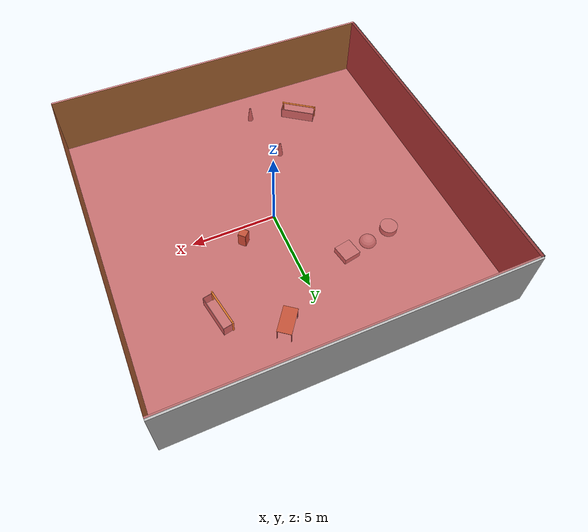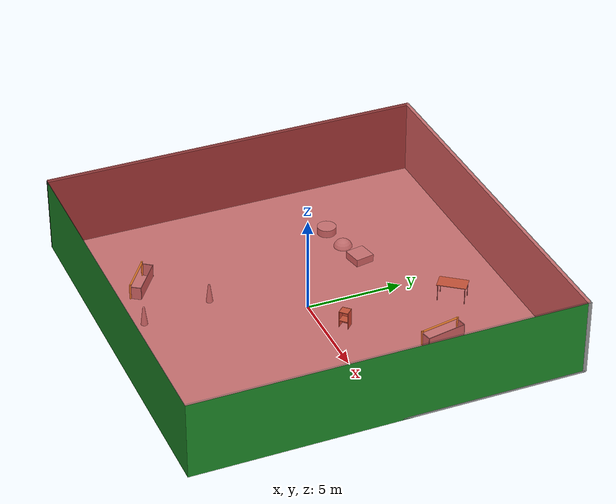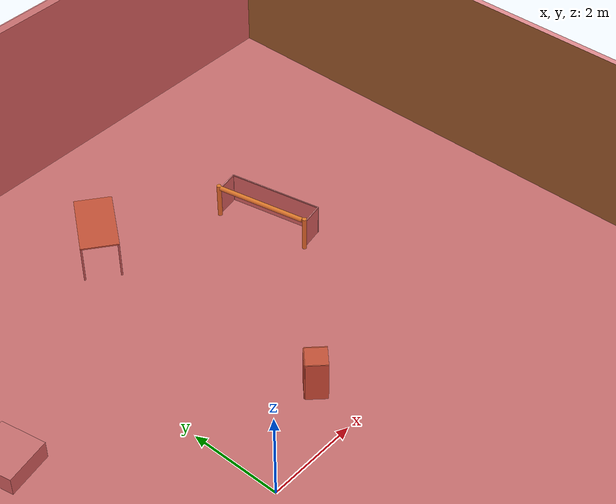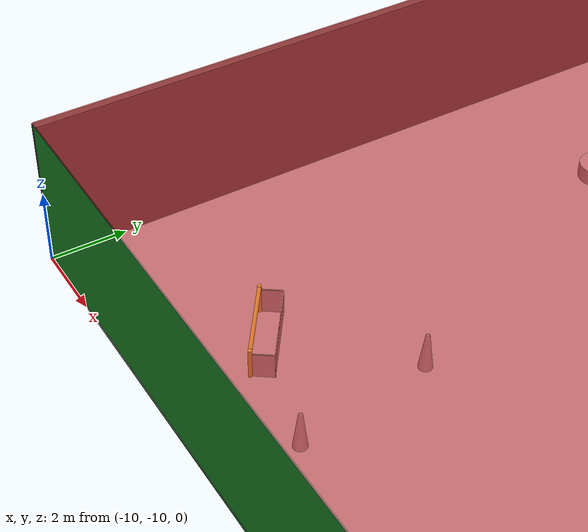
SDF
<sdf version="1.4">
 <world name="default">
  <physics type="ode">
   <max_step_size>0.001</max_step_size>
   <real_time_factor>1</real_time_factor>
   <real_time_update_rate>1000</real_time_update_rate>
   <gravity>0 0 -9.8</gravity>
  </physics>
  <scene><ambient>0.4 0.4 0.4 1</ambient><background>0.7 0.7 0.7 1</background><shadows>1</shadows></scene>
  <model name="Surrounding">
   <static>1</static>
   <link name="Ceiling">
    <collision name="Ceiling_Collision"><geometry><box><size>20 20 0.1</size></box></geometry></collision>
    <visual name="Ceiling_Visual">
     <geometry><box><size>20 20 0.1</size></box></geometry>
     <material>
      <script><uri>file://media/materials/scripts/gazebo.material</uri><name>Gazebo/RedTransparent</name></script>
     </material>
    </visual>
    <pose>0 0 4.05 0 0 0</pose>
   </link>
   <link name="Wall_South">
    <collision name="Wall_South_Collision">
     <geometry><box><size>20 0 4</size></box></geometry>
     <pose>0 0 2 0 -0 0</pose>
    </collision>
    <visual name="Wall_South_Visual">
     <pose>0 0 2 0 -0 0</pose>
     <geometry><box><size>20 0 4</size></box></geometry>
     <material>
      <script><uri>file://media/materials/scripts/gazebo.material</uri><name>Gazebo/Green</name></script>
     </material>
    </visual>
    <velocity_decay><linear>0</linear><angular>0</angular></velocity_decay>
    <pose>0 -10 0 0 -0 0</pose>
   </link>
   <link name="Wall_East">
    <collision name="Wall_21_Collision">
     <geometry><box><size>20 0 4</size></box></geometry>
     <pose>0 0 2 0 -0 0</pose>
    </collision>
    <visual name="Wall_21_Visual">
     <pose>0 0 2 0 -0 0</pose>
     <geometry><box><size>20 0 4</size></box></geometry>
     <material>
      <script><uri>file://media/materials/scripts/gazebo.material</uri><name>Gazebo/Green</name></script>
     </material>
    </visual>
    <velocity_decay><linear>0</linear><angular>0</angular></velocity_decay>
    <pose>10 0 0 0 -0 1.5708</pose>
   </link>
   <link name="Wall_North">
    <collision name="Wall_22_Collision">
     <geometry><box><size>20 0.2 4</size></box></geometry>
     <pose>0 0 2 0 -0 0</pose>
    </collision>
    <visual name="Wall_22_Visual">
     <pose>0 0 2 0 -0 0</pose>
     <geometry><box><size>20 0.2 4</size></box></geometry>
     <material>
      <script><uri>file://media/materials/scripts/gazebo.material</uri><name>Gazebo/LightOff</name></script>
     </material>
    </visual>
    <velocity_decay><linear>0</linear><angular>0</angular></velocity_decay>
    <pose>0 10 0 0 -0 0</pose>
   </link>
   <link name="Wall_West">
    <collision name="Wall_23_Collision">
     <geometry><box><size>20 0.2 4</size></box></geometry>
     <pose>0 0 2 0 -0 0</pose>
    </collision>
    <visual name="Wall_23_Visual">
     <pose>0 0 2 0 -0 0</pose>
     <geometry><box><size>20 0.2 4</size></box></geometry>
     <material>
      <script><uri>file://media/materials/scripts/gazebo.material</uri><name>Gazebo/DarkGrey</name></script>
     </material>
    </visual>
    <velocity_decay><linear>0</linear><angular>0</angular></velocity_decay>
    <pose>-10 0 0 0 0 -1.5708</pose>
   </link>
   <link name="Ground_link">
    <collision name="collision">
     <pose>0 0 .05 0 -0 0</pose>
     <geometry><box><size>20 20 0.1</size></box></geometry>
    </collision>
    <visual name="visual">
     <pose>0 0 .05 0 -0 0</pose>
     <geometry><box><size>20 20 0.1</size></box></geometry>
     <material>
      <script><uri>file://media/materials/scripts/gazebo.material</uri><name>Gazebo/LightOff</name></script>
     </material>
    </visual>
   </link>
   <static>1</static>
  </model>
  <spherical_coordinates>
   <surface_model>EARTH_WGS84</surface_model>
   <latitude_deg>0</latitude_deg>
   <longitude_deg>0</longitude_deg>
   <elevation>0</elevation>
   <heading_deg>0</heading_deg>
  </spherical_coordinates>
  <light name="lightball_0" type="diffuse">
   <diffuse>0.8 0.8 0.8 1</diffuse>
   <specular>0.2 0.2 0.2 1</specular>
   <attenuation>
    <range>100</range>
    <constant>0.7</constant>
    <linear>0.01</linear>
    <quadratic>0.001</quadratic>
   </attenuation>
   <direction>-0.5 0.1 -0.9</direction>
   <pose>-1.64171796692 7.94490898158 2.4467565561 0 0 0</pose>
  </light>
  <light name="lightball_1" type="diffuse">
   <diffuse>0.8 0.8 0.8 1</diffuse>
   <specular>0.2 0.2 0.2 1</specular>
   <attenuation>
    <range>100</range>
    <constant>0.7</constant>
    <linear>0.01</linear>
    <quadratic>0.001</quadratic>
   </attenuation>
   <direction>-0.5 0.1 -0.9</direction>
   <pose>-1.57878072742 8.22792695026 1.56171364272 0 0 0</pose>
  </light>
  <light name="lightball_2" type="diffuse">
   <diffuse>0.8 0.8 0.8 1</diffuse>
   <specular>0.2 0.2 0.2 1</specular>
   <attenuation>
    <range>100</range>
    <constant>0.7</constant>
    <linear>0.01</linear>
    <quadratic>0.001</quadratic>
   </attenuation>
   <direction>-0.5 0.1 -0.9</direction>
   <pose>2.31909002624 -2.2092277715 3.0321434858 0 0 0</pose>
  </light>
  <light name="lightball_3" type="diffuse">
   <diffuse>0.8 0.8 0.8 1</diffuse>
   <specular>0.2 0.2 0.2 1</specular>
   <attenuation>
    <range>100</range>
    <constant>0.7</constant>
    <linear>0.01</linear>
    <quadratic>0.001</quadratic>
   </attenuation>
   <direction>-0.5 0.1 -0.9</direction>
   <pose>-7.08321679753 5.78550155796 1.81119760596 0 0 0</pose>
  </light>
  <light name="lightball_4" type="diffuse">
   <diffuse>0.8 0.8 0.8 1</diffuse>
   <specular>0.2 0.2 0.2 1</specular>
   <attenuation>
    <range>100</range>
    <constant>0.7</constant>
    <linear>0.01</linear>
    <quadratic>0.001</quadratic>
   </attenuation>
   <direction>-0.5 0.1 -0.9</direction>
   <pose>7.05140041701 1.84974189989 1.04576284775 0 0 0</pose>
  </light>
  <light name="lightball_5" type="diffuse">
   <diffuse>0.8 0.8 0.8 1</diffuse>
   <specular>0.2 0.2 0.2 1</specular>
   <attenuation>
    <range>100</range>
    <constant>0.7</constant>
    <linear>0.01</linear>
    <quadratic>0.001</quadratic>
   </attenuation>
   <direction>-0.5 0.1 -0.9</direction>
   <pose>-8.60947741321 -0.427938321267 3.293174304 0 0 0</pose>
  </light>
  <light name="lightball_6" type="diffuse">
   <diffuse>0.8 0.8 0.8 1</diffuse>
   <specular>0.2 0.2 0.2 1</specular>
   <attenuation>
    <range>100</range>
    <constant>0.7</constant>
    <linear>0.01</linear>
    <quadratic>0.001</quadratic>
   </attenuation>
   <direction>-0.5 0.1 -0.9</direction>
   <pose>-2.51841558988 -3.03016072215 1.94056548145 0 0 0</pose>
  </light>
  <light name="lightball_7" type="diffuse">
   <diffuse>0.8 0.8 0.8 1</diffuse>
   <specular>0.2 0.2 0.2 1</specular>
   <attenuation>
    <range>100</range>
    <constant>0.7</constant>
    <linear>0.01</linear>
    <quadratic>0.001</quadratic>
   </attenuation>
   <direction>-0.5 0.1 -0.9</direction>
   <pose>-9.73555150262 -7.90155508882 3.62397848614 0 0 0</pose>
  </light>
  <light name="lightball_8" type="diffuse">
   <diffuse>0.8 0.8 0.8 1</diffuse>
   <specular>0.2 0.2 0.2 1</specular>
   <attenuation>
    <range>100</range>
    <constant>0.7</constant>
    <linear>0.01</linear>
    <quadratic>0.001</quadratic>
   </attenuation>
   <direction>-0.5 0.1 -0.9</direction>
   <pose>2.03991924127 -6.27164468491 0.640826231153 0 0 0</pose>
  </light>
  <light name="lightball_9" type="diffuse">
   <diffuse>0.8 0.8 0.8 1</diffuse>
   <specular>0.2 0.2 0.2 1</specular>
   <attenuation>
    <range>100</range>
    <constant>0.7</constant>
    <linear>0.01</linear>
    <quadratic>0.001</quadratic>
   </attenuation>
   <direction>-0.5 0.1 -0.9</direction>
   <pose>-7.60676933706 -0.783878773285 3.74412860726 0 0 0</pose>
  </light>
  <light name="lightball_10" type="diffuse">
   <diffuse>0.8 0.8 0.8 1</diffuse>
   <specular>0.2 0.2 0.2 1</specular>
   <attenuation>
    <range>100</range>
    <constant>0.7</constant>
    <linear>0.01</linear>
    <quadratic>0.001</quadratic>
   </attenuation>
   <direction>-0.5 0.1 -0.9</direction>
   <pose>-9.91867076753 -9.1662601313 1.58850001593 0 0 0</pose>
  </light>
  <light name="lightball_11" type="diffuse">
   <diffuse>0.8 0.8 0.8 1</diffuse>
   <specular>0.2 0.2 0.2 1</specular>
   <attenuation>
    <range>100</range>
    <constant>0.7</constant>
    <linear>0.01</linear>
    <quadratic>0.001</quadratic>
   </attenuation>
   <direction>-0.5 0.1 -0.9</direction>
   <pose>0.187220935131 8.3042976581 1.03855136265 0 0 0</pose>
  </light>
  <light name="lightball_12" type="diffuse">
   <diffuse>0.8 0.8 0.8 1</diffuse>
   <specular>0.2 0.2 0.2 1</specular>
   <attenuation>
    <range>100</range>
    <constant>0.7</constant>
    <linear>0.01</linear>
    <quadratic>0.001</quadratic>
   </attenuation>
   <direction>-0.5 0.1 -0.9</direction>
   <pose>-2.96408213066 -2.92173405657 2.30265516554 0 0 0</pose>
  </light>
  <light name="lightball_13" type="diffuse">
   <diffuse>0.8 0.8 0.8 1</diffuse>
   <specular>0.2 0.2 0.2 1</specular>
   <attenuation>
    <range>100</range>
    <constant>0.7</constant>
    <linear>0.01</linear>
    <quadratic>0.001</quadratic>
   </attenuation>
   <direction>-0.5 0.1 -0.9</direction>
   <pose>-4.5198326526 4.31870811464 0.661573158073 0 0 0</pose>
  </light>
  <include>
   <uri>model://robocup_3Dsim_goal</uri>
   <pose>-4.86346770895 -7.21651280476 0 0 0 0.951321732095</pose>
  </include>
  <include>
   <uri>model://textured_shapes</uri>
   <pose>-4.21776073728 3.7442227565 0 0 0 1.75843544852</pose>
  </include>
  <include>
   <uri>model://construction_cone</uri>
   <pose>-1.68826410806 -7.92426981826 0 0 0 1.50572188385</pose>
  </include>
  <include>
   <uri>model://construction_cone</uri>
   <pose>-2.26542876527 -4.31225271984 0 0 0 2.32894013473</pose>
  </include>
  <include><uri>model://cabinet</uri><pose>2.27112158287 1.01247581789 0 0 0 2.33909568681</pose></include>
  <include><uri>model://table</uri><pose>2.14726468289 6.86522588987 0 0 0 0.921551988365</pose></include>
  <include>
   <uri>model://robocup_3Dsim_goal</uri>
   <pose>4.92380733217 4.83503136648 0 0 0 0.186304378222</pose>
  </include>
 </world>
</sdf>

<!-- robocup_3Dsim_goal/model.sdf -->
<sdf version="1.5">
  <model name="robocup_3d_goal">
    <static>true</static>
    <link name="left_post">
      <pose>0 1.05 0.45 0 0 0</pose>
      <collision name="collision">
        <geometry>
          <cylinder>
            <radius>0.05</radius>
            <length>0.9</length>
          </cylinder>
        </geometry>
      </collision>
      <visual name="visual">
        <geometry>
          <cylinder>
            <radius>0.05</radius>
            <length>0.9</length>
          </cylinder>
        </geometry>
        <material>
          <script>
            <uri>file://media/materials/scripts/gazebo.material</uri>
            <name>Gazebo/ZincYellow</name>
          </script>
        </material>
      </visual>
    </link>
    <link name="left_support_horiz_lower">
      <pose>0.30 1.05 0.01 0 0 0</pose>
      <collision name="collision">
        <geometry>
          <box>
            <size>0.50 0.02 0.02</size>
          </box>
        </geometry>
      </collision>
      <visual name="visual">
        <geometry>
          <box>
            <size>0.50 0.02 0.02</size>
          </box>
        </geometry>
        <material>
          <script>
            <uri>file://media/materials/scripts/gazebo.material</uri>
            <name>Gazebo/White</name>
          </script>
        </material>
      </visual>
    </link>
    <link name="left_support_horiz_upper">
      <pose>0.30 1.05 0.79 0 0 0</pose>
      <collision name="collision">
        <geometry>
          <box>
            <size>0.50 0.02 0.02</size>
          </box>
        </geometry>
      </collision>
      <visual name="visual">
        <geometry>
          <box>
            <size>0.50 0.02 0.02</size>
          </box>
        </geometry>
        <material>
          <script>
            <uri>file://media/materials/scripts/gazebo.material</uri>
            <name>Gazebo/White</name>
          </script>
        </material>
      </visual>
    </link>
    <link name="left_support_vertical">
      <pose>0.56 1.05 0.4 0 1.5708 0</pose>
      <collision name="collision">
        <geometry>
          <box>
            <size>0.80 0.02 0.02</size>
          </box>
        </geometry>
      </collision>
      <visual name="visual">
        <geometry>
          <box>
            <size>0.80 0.02 0.02</size>
          </box>
        </geometry>
        <material>
          <script>
            <uri>file://media/materials/scripts/gazebo.material</uri>
            <name>Gazebo/White</name>
          </script>
        </material>
      </visual>
    </link>
    <link name="right_support_horiz_lower">
      <pose>0.30 -1.05 0.01 0 0 0</pose>
      <collision name="collision">
        <geometry>
          <box>
            <size>0.50 0.02 0.02</size>
          </box>
        </geometry>
      </collision>
      <visual name="visual">
        <geometry>
          <box>
            <size>0.50 0.02 0.02</size>
          </box>
        </geometry>
        <material>
          <script>
            <uri>file://media/materials/scripts/gazebo.material</uri>
            <name>Gazebo/White</name>
          </script>
        </material>
      </visual>
    </link>
    <link name="right_support_horiz_upper">
      <pose>0.30 -1.05 0.79 0 0 0</pose>
      <collision name="collision">
        <geometry>
          <box>
            <size>0.50 0.02 0.02</size>
          </box>
        </geometry>
      </collision>
      <visual name="visual">
        <geometry>
          <box>
            <size>0.50 0.02 0.02</size>
          </box>
        </geometry>
        <material>
          <script>
            <uri>file://media/materials/scripts/gazebo.material</uri>
            <name>Gazebo/White</name>
          </script>
        </material>
      </visual>
    </link>
    <link name="right_support_vertical">
      <pose>0.56 -1.05 0.4 0 1.5708 0</pose>
      <collision name="collision">
        <geometry>
          <box>
            <size>0.80 0.02 0.02</size>
          </box>
        </geometry>
      </collision>
      <visual name="visual">
        <geometry>
          <box>
            <size>0.80 0.02 0.02</size>
          </box>
        </geometry>
        <material>
          <script>
            <uri>file://media/materials/scripts/gazebo.material</uri>
            <name>Gazebo/White</name>
          </script>
        </material>
      </visual>
    </link>
    <link name="center_support_horiz_lower">
      <pose>0.56 0 0.01 0 1.5708 0</pose>
      <collision name="collision">
        <geometry>
          <box>
            <size>0.02 2.08 0.02</size>
          </box>
        </geometry>
      </collision>
      <visual name="visual">
        <geometry>
          <box>
            <size>0.02 2.08 0.02</size>
          </box>
        </geometry>
        <material>
          <script>
            <uri>file://media/materials/scripts/gazebo.material</uri>
            <name>Gazebo/White</name>
          </script>
        </material>
      </visual>
    </link>
    <link name="center_support_horiz_upper">
      <pose>0.56 0 0.79 0 1.5708 0</pose>
      <collision name="collision">
        <geometry>
          <box>
            <size>0.02 2.08 0.02</size>
          </box>
        </geometry>
      </collision>
      <visual name="visual">
        <geometry>
          <box>
            <size>0.02 2.08 0.02</size>
          </box>
        </geometry>
        <material>
          <script>
            <uri>file://media/materials/scripts/gazebo.material</uri>
            <name>Gazebo/White</name>
          </script>
        </material>
      </visual>
    </link>
    <link name="right_post">
      <pose>0 -1.05 0.45 0 0 0</pose>
      <collision name="collision">
        <geometry>
          <cylinder>
            <radius>0.05</radius>
            <length>0.9</length>
          </cylinder>
        </geometry>
      </collision>
      <visual name="visual">
        <geometry>
          <cylinder>
            <radius>0.05</radius>
            <length>0.9</length>
          </cylinder>
        </geometry>
        <material>
          <script>
            <uri>file://media/materials/scripts/gazebo.material</uri>
            <name>Gazebo/ZincYellow</name>
          </script>
        </material>
      </visual>
    </link>
    <link name="crossbar">
      <pose>0 0 0.85 1.57 1.57 0</pose>
      <collision name="collision">
        <geometry>
          <cylinder>
            <radius>0.05</radius>
            <length>2.0</length>
          </cylinder>
        </geometry>
      </collision>
      <visual name="visual">
        <geometry>
          <cylinder>
            <radius>0.05</radius>
            <length>2.0</length>
          </cylinder>
        </geometry>
        <material>
          <script>
            <uri>file://media/materials/scripts/gazebo.material</uri>
            <name>Gazebo/ZincYellow</name>
          </script>
        </material>
      </visual>
    </link>
    <link name="center_net">
      <pose>0.56 0 0.40 0 0 0</pose>
      <collision name="collision">
        <geometry>
          <box>
            <size>0.01 2.1 0.80</size>
          </box>
        </geometry>
      </collision>
      <visual name="visual">
        <geometry>
          <box>
            <size>0.01 2.1 0.80</size>
          </box>
        </geometry>
        <material>
          <script>
            <uri>model://../model_source/models/robocup09_spl_field/materials/scripts/</uri>
            <uri>model://../model_source/models/robocup09_spl_field/materials/textures/</uri>
            <name>RoboCup/Net</name>
          </script>
        </material>
      </visual>
    </link>
    <link name="left_net">
      <pose>0.30 1.05 0.40 0 0 0</pose>
      <collision name="collision">
        <geometry>
          <box>
            <size>0.50 0.01 0.76</size>
          </box>
        </geometry>
      </collision>
      <visual name="visual">
        <geometry>
          <box>
            <size>0.50 0.01 0.76</size>
          </box>
        </geometry>
        <material>
          <script>
            <uri>model://../model_source/models/robocup09_spl_field/materials/scripts/</uri>
            <uri>model://../model_source/models/robocup09_spl_field/materials/textures/</uri>
            <name>RoboCup/Net</name>
          </script>
        </material>
      </visual>
    </link>
    <link name="right_net">
      <pose>0.30 -1.05 0.40 0 0 0</pose>
      <collision name="collision">
        <geometry>
          <box>
            <size>0.50 0.01 0.76</size>
          </box>
        </geometry>
      </collision>
      <visual name="visual">
        <geometry>
          <box>
            <size>0.50 0.01 0.76</size>
          </box>
        </geometry>
        <material>
          <script>
            <uri>model://../model_source/models/robocup09_spl_field/materials/scripts/</uri>
            <uri>model://../model_source/models/robocup09_spl_field/materials/textures/</uri>
            <name>RoboCup/Net</name>
          </script>
        </material>
      </visual>
    </link>
  </model>
</sdf>

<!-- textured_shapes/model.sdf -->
<sdf version="1.6">
  <model name="textured_shapes">
    <pose>0 0 0.5 0 0 0</pose>
    <link name="box">
      <pose>0 -1.5 0 0 0 0</pose>
      <collision name="collision">
        <geometry>
          <box>
            <size>1 1 1</size>
          </box>
        </geometry>
      </collision>
      <visual name="visual">
        <geometry>
          <box>
            <size>1 1 1</size>
          </box>
        </geometry>
        <material>
          <script>
            <uri>model://../model_source/models/textured_shapes/materials/scripts</uri>
            <uri>model://../model_source/models/textured_shapes/materials/textures</uri>
            <name>TexturedShape/Squares</name>
          </script>
        </material>
      </visual>
    </link>
    <link name="sphere">
      <collision name="collision">
        <geometry>
          <sphere>
            <radius>0.5</radius>
          </sphere>
        </geometry>
      </collision>
      <visual name="visual">
        <geometry>
          <sphere>
            <radius>0.5</radius>
          </sphere>
        </geometry>
        <material>
          <script>
            <uri>model://../model_source/models/textured_shapes/materials/scripts</uri>
            <uri>model://../model_source/models/textured_shapes/materials/textures</uri>
            <name>TexturedShape/Squares</name>
          </script>
        </material>
      </visual>
    </link>
    <link name="cylinder">
      <pose>0 1.5 0 0 0 0</pose>
      <collision name="collision">
        <geometry>
          <cylinder>
            <radius>0.5</radius>
            <length>1</length>
          </cylinder>
        </geometry>
      </collision>
      <visual name="visual">
        <geometry>
          <cylinder>
            <radius>0.5</radius>
            <length>1</length>
          </cylinder>
        </geometry>
        <material>
          <script>
            <uri>model://../model_source/models/textured_shapes/materials/scripts</uri>
            <uri>model://../model_source/models/textured_shapes/materials/textures</uri>
            <name>TexturedShape/Squares</name>
          </script>
        </material>
      </visual>
    </link>
  </model>
</sdf>

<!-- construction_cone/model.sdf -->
<sdf version="1.5">
  <model name="Construction Cone">
    <link name="link">
      <collision name="collision">
        <geometry>
          <mesh>
            <scale>10 10 10</scale>
            <uri>file://isr-testbed/construction_cone/meshes/construction_cone.dae</uri>
          </mesh>
        </geometry>
      </collision>
      <visual name="visual">
        <geometry>
          <mesh>
            <scale>10 10 10</scale>
            <uri>file://isr-testbed/construction_cone/meshes/construction_cone.dae</uri>
          </mesh>
        </geometry>
      </visual>
    </link>
  </model>
</sdf>

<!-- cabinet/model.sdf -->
<sdf version="1.5">
  <model name="cabinet">
    <static>true</static>
    <link name="cabinet_bottom_plate">
      <inertial>
        <pose>0 0 -1 0 0 0</pose>
        <inertia>
          <ixx>2.050000</ixx>
          <ixy>0</ixy>
          <ixz>0</ixz>
          <iyy>2.050000</iyy>
          <iyz>0</iyz>
          <izz>2.050000</izz>
        </inertia>
        <mass>25.000000</mass>
      </inertial>
      <collision name="cabinet_bottom_plate_geom">
        <pose>0 0 0.010000 0 0 0</pose>
        <geometry>
          <box>
            <size>0.450000 0.450000 0.020000</size>
          </box>
        </geometry>
      </collision>
      <visual name="cabinet_bottom_plate_geom_visual">
        <pose>0 0 0.010000 0 0 0</pose>
        <geometry>
          <box>
            <size>0.450000 0.450000 0.020000</size>
          </box>
        </geometry>
        <material>
          <script>
            <uri>model://media/materials/scripts/gazebo.material</uri>
            <name>Gazebo/Wood</name>
          </script>
        </material>
      </visual>
      <collision name="cabinet_bottom_plate_geom_cabinet_back_plate">
        <pose>0.235000 0 0.510000 0 0 0</pose>
        <geometry>
          <box>
            <size>0.020000 0.450000 1.020000</size>
          </box>
        </geometry>
      </collision>
      <visual name="cabinet_bottom_plate_geom_cabinet_back_plate_visual">
        <pose>0.235000 0 0.510000 0 0 0</pose>
        <geometry>
          <box>
            <size>0.020000 0.450000 1.020000</size>
          </box>
        </geometry>
        <material>
          <script>
            <uri>model://media/materials/scripts/gazebo.material</uri>
            <name>Gazebo/Wood</name>
          </script>
        </material>
      </visual>
      <collision name="cabinet_bottom_plate_geom_cabinet_left_plate">
        <pose>0 0.235000 0.510000 0 0 0</pose>
        <geometry>
          <box>
            <size>0.450000 0.020000 1.020000</size>
          </box>
        </geometry>
      </collision>
      <visual name="cabinet_bottom_plate_geom_cabinet_left_plate_visual">
        <pose>0 0.235000 0.510000 0 0 0</pose>
        <geometry>
          <box>
            <size>0.450000 0.020000 1.020000</size>
          </box>
        </geometry>
        <material>
          <script>
            <uri>model://media/materials/scripts/gazebo.material</uri>
            <name>Gazebo/Wood</name>
          </script>
        </material>
      </visual>
      <collision name="cabinet_bottom_plate_geom_cabinet_middle_plate">
        <pose>0 0 0.510000 0 0 0</pose>
        <geometry>
          <box>
            <size>0.450000 0.450000 0.020000</size>
          </box>
        </geometry>
      </collision>
      <visual name="cabinet_bottom_plate_geom_cabinet_middle_plate_visual">
        <pose>0 0 0.510000 0 0 0</pose>
        <geometry>
          <box>
            <size>0.450000 0.450000 0.020000</size>
          </box>
        </geometry>
        <material>
          <script>
            <uri>model://media/materials/scripts/gazebo.material</uri>
            <name>Gazebo/Wood</name>
          </script>
        </material>
      </visual>
      <collision name="cabinet_bottom_plate_geom_cabinet_right_plate">
        <pose>0 -0.235000 0.510000 0 0 0</pose>
        <geometry>
          <box>
            <size>0.450000 0.020000 1.020000</size>
          </box>
        </geometry>
      </collision>
      <visual name="cabinet_bottom_plate_geom_cabinet_right_plate_visual">
        <pose>0 -0.235000 0.510000 0 0 0</pose>
        <geometry>
          <box>
            <size>0.450000 0.020000 1.020000</size>
          </box>
        </geometry>
        <material>
          <script>
            <uri>model://media/materials/scripts/gazebo.material</uri>
            <name>Gazebo/Wood</name>
          </script>
        </material>
      </visual>
      <collision name="cabinet_bottom_plate_geom_cabinet_top_plate">
        <pose>0 0 1.010000 0 0 0</pose>
        <geometry>
          <box>
            <size>0.450000 0.450000 0.020000</size>
          </box>
        </geometry>
      </collision>
      <visual name="cabinet_bottom_plate_geom_cabinet_top_plate_visual">
        <pose>0 0 1.010000 0 0 0</pose>
        <geometry>
          <box>
            <size>0.450000 0.450000 0.020000</size>
          </box>
        </geometry>
        <material>
          <script>
            <uri>model://media/materials/scripts/gazebo.material</uri>
            <name>Gazebo/Wood</name>
          </script>
        </material>
      </visual>
    </link>
  </model>
</sdf>

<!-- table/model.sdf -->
<sdf version="1.5">
  <model name="table">
    <static>true</static>
    <link name="link">
      <collision name="surface">
        <pose>0 0 1.0 0 0 0</pose>
        <geometry>
          <box>
            <size>1.5 0.8 0.03</size>
          </box>
        </geometry>
        <surface>
          <friction>
            <ode>
              <mu>0.6</mu>
              <mu2>0.6</mu2>
            </ode>
          </friction>
        </surface>
      </collision>
      <visual name="visual1">
        <pose>0 0 1.0 0 0 0</pose>
        <geometry>
          <box>
            <size>1.5 0.8 0.03</size>
          </box>
        </geometry>
        <material>
          <script>
            <uri>model://media/materials/scripts/gazebo.material</uri>
            <name>Gazebo/Wood</name>
          </script>
        </material>
      </visual>
      <collision name="front_left_leg">
        <pose>0.68 0.38 0.5 0 0 0</pose>
        <geometry>
          <cylinder>
            <radius>0.02</radius>
            <length>1.0</length>
          </cylinder>
        </geometry>
      </collision>
      <visual name="front_left_leg">
        <pose>0.68 0.38 0.5 0 0 0</pose>
        <geometry>
          <cylinder>
            <radius>0.02</radius>
            <length>1.0</length>
          </cylinder>
        </geometry>
        <material>
          <script>
            <uri>model://media/materials/scripts/gazebo.material</uri>
            <name>Gazebo/Grey</name>
          </script>
        </material>
      </visual>
      <collision name="front_right_leg">
        <pose>0.68 -0.38 0.5 0 0 0</pose>
        <geometry>
          <cylinder>
            <radius>0.02</radius>
            <length>1.0</length>
          </cylinder>
        </geometry>
      </collision>
      <visual name="front_right_leg">
        <pose>0.68 -0.38 0.5 0 0 0</pose>
        <geometry>
          <cylinder>
            <radius>0.02</radius>
            <length>1.0</length>
          </cylinder>
        </geometry>
        <material>
          <script>
            <uri>model://media/materials/scripts/gazebo.material</uri>
            <name>Gazebo/Grey</name>
          </script>
        </material>
      </visual>
      <collision name="back_right_leg">
        <pose>-0.68 -0.38 0.5 0 0 0</pose>
        <geometry>
          <cylinder>
            <radius>0.02</radius>
            <length>1.0</length>
          </cylinder>
        </geometry>
      </collision>
      <visual name="back_right_leg">
        <pose>-0.68 -0.38 0.5 0 0 0</pose>
        <geometry>
          <cylinder>
            <radius>0.02</radius>
            <length>1.0</length>
          </cylinder>
        </geometry>
        <material>
          <script>
            <uri>model://media/materials/scripts/gazebo.material</uri>
            <name>Gazebo/Grey</name>
          </script>
        </material>
      </visual>
      <collision name="back_left_leg">
        <pose>-0.68 0.38 0.5 0 0 0</pose>
        <geometry>
          <cylinder>
            <radius>0.02</radius>
            <length>1.0</length>
          </cylinder>
        </geometry>
      </collision>
      <visual name="back_left_leg">
        <pose>-0.68 0.38 0.5 0 0 0</pose>
        <geometry>
          <cylinder>
            <radius>0.02</radius>
            <length>1.0</length>
          </cylinder>
        </geometry>
        <material>
          <script>
            <uri>model://media/materials/scripts/gazebo.material</uri>
            <name>Gazebo/Grey</name>
          </script>
        </material>
      </visual>
    </link>
  </model>
</sdf>
